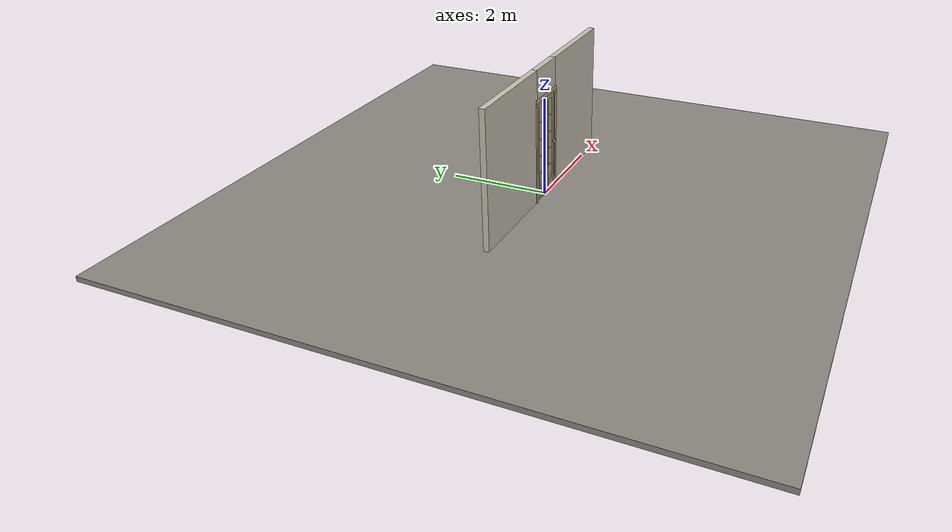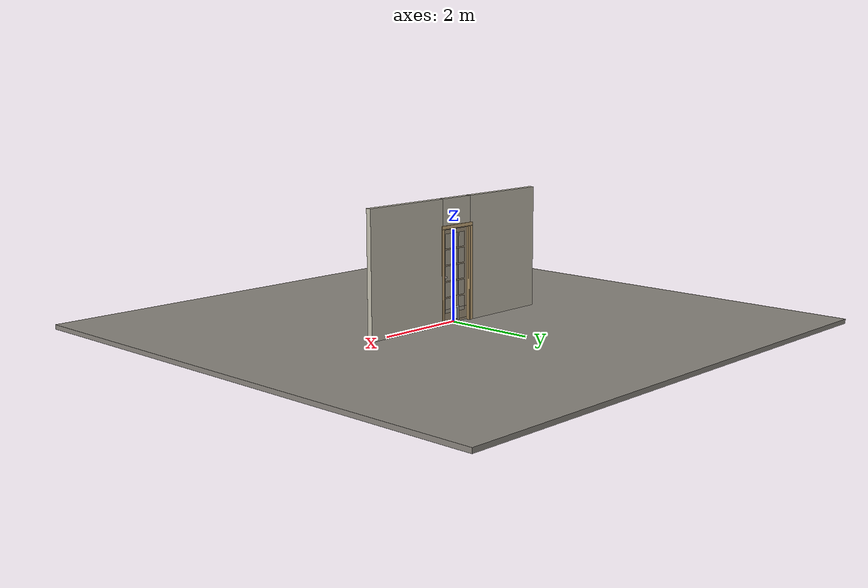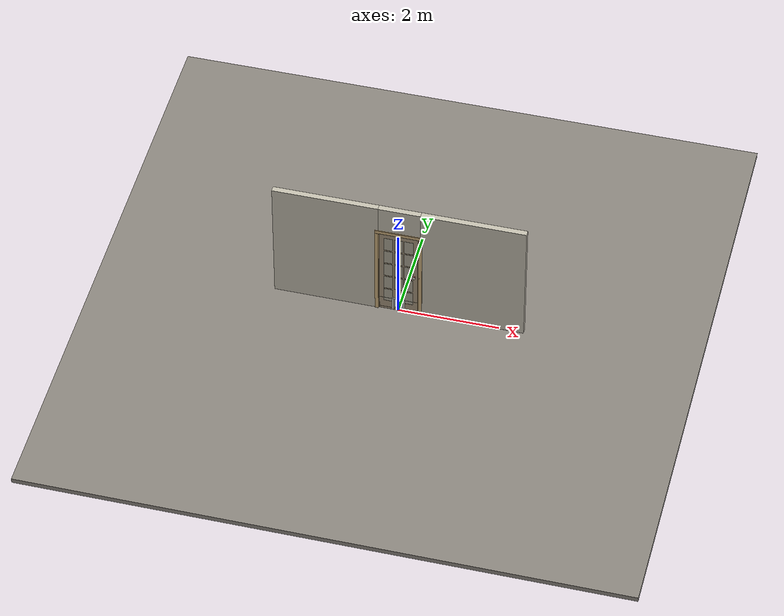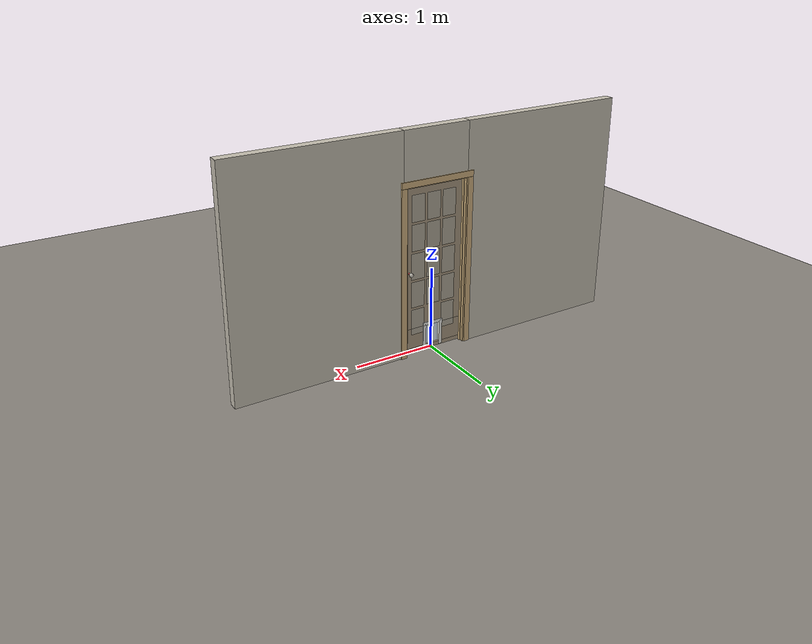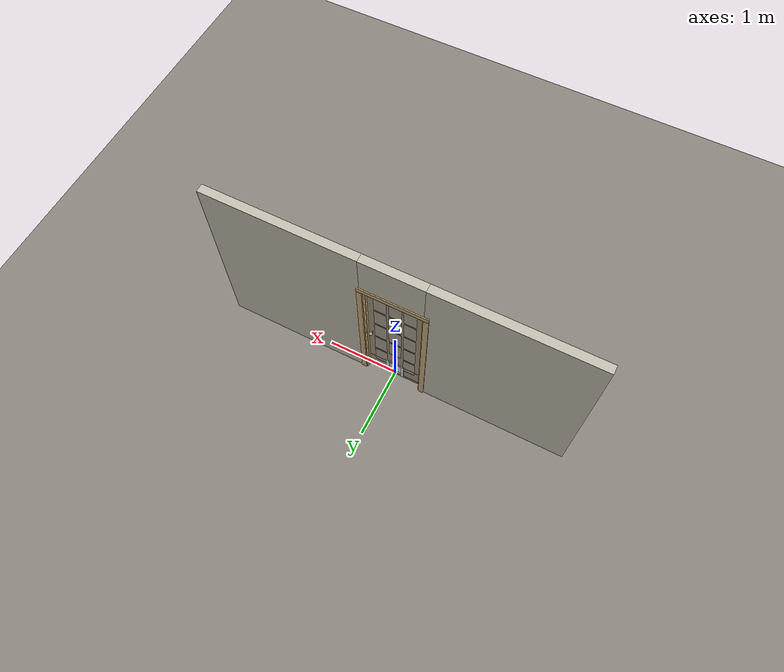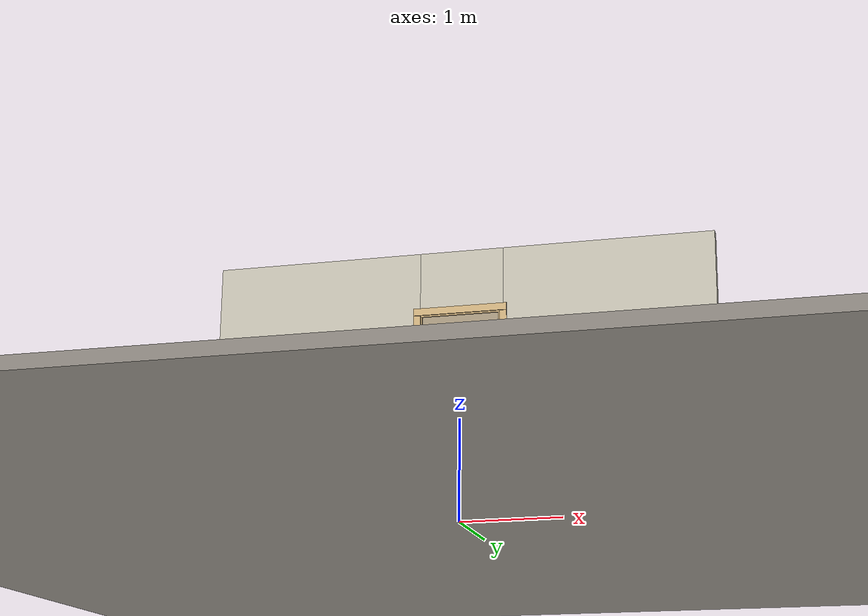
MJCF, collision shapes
<?xml version="1.0" ?>
<mujoco model="db0885_swing_single_full">
  <compiler angle="radian" meshdir="../../hardware" texturedir="../../textures" autolimits="true" inertiafromgeom="false"/>
  <option timestep="0.002" integrator="implicitfast" cone="elliptic" impratio="10" noslip_iterations="3">
    <flag multiccd="enable"/>
  </option>
  <size memory="16M"/>
  <default>
    <geom condim="4" solref="0.005 1" solimp="0.95 0.99 0.001"/>
    <joint solreflimit="0.005 1" solimplimit="0.95 0.99 0.001"/>
    <tendon solreflimit="0.005 1"/>
    <equality solref="0.002 1"/>
  </default>
  <visual>
    <headlight ambient="0.4 0.4 0.4" diffuse="0.7 0.7 0.7" specular="0.2 0.2 0.2"/>
    <quality shadowsize="4096"/>
    <map znear="0.01" zfar="60"/>
  </visual>
  <asset>
    <mesh name="hinge_9ae1f9b7de" file="hinge_9ae1f9b7de.obj"/>
    <mesh name="hinge_jamb_50e97ebc96" file="hinge_jamb_50e97ebc96.obj"/>
    <mesh name="knob_248d825e64" file="knob_248d825e64.obj"/>
    <mesh name="knob_d1888f6f03" file="knob_d1888f6f03.obj"/>
    <material name="mat_floor" rgba="0.55 0.53 0.5 1" specular="0.2" shininess="0.15" reflectance="0"/>
    <material name="mat_wall" rgba="0.78 0.76 0.7 1" specular="0.2" shininess="0.1" reflectance="0"/>
    <material name="mat_leaf" rgba="0.66 0.6 0.5 1" specular="0.2" shininess="0.45" reflectance="0"/>
    <material name="mat_glass" rgba="0.85 0.92 0.95 0.25" specular="0.2" shininess="0.95" reflectance="0.1"/>
    <material name="mat_hinge" rgba="0.65 0.66 0.68 1" specular="0.74" shininess="0.5" reflectance="0.36"/>
    <material name="mat_op_nickel_satin" rgba="0.72 0.7 0.66 1" specular="0.8" shininess="0.65" reflectance="0.4"/>
    <material name="mat_trim" rgba="0.85 0.66 0.3 1" specular="0.8" shininess="0.75" reflectance="0.4"/>
    <material name="mat_bolt" rgba="0.85 0.66 0.3 1" specular="0.8" shininess="0.75" reflectance="0.4"/>
    <material name="mat_frame" rgba="0.82 0.7 0.5 1" specular="0.2" shininess="0.45" reflectance="0"/>
    <material name="mat_seal" rgba="0.1 0.1 0.1 1" specular="0.2" shininess="0.1" reflectance="0"/>
    <material name="mat_petframe" rgba="0.92 0.92 0.9 1" specular="0.2" shininess="0.6" reflectance="0"/>
    <material name="mat_petflap" rgba="0.85 0.9 0.95 0.45" specular="0.2" shininess="0.7" reflectance="0.1"/>
    <texture name="skybox" type="skybox" builtin="gradient" rgb1="0.6 0.7 0.85" rgb2="0.9 0.92 0.95" width="256" height="256"/>
  </asset>
  <worldbody>
    <light name="sun" pos="1.5 -2.5 4" dir="-0.3 0.5 -0.8" directional="true" diffuse="0.8 0.8 0.8" specular="0.3 0.3 0.3" castshadow="true"/>
    <light name="fill" pos="-1.5 2.5 3" dir="0.3 -0.5 -0.7" directional="true" diffuse="0.35 0.35 0.4" castshadow="false"/>
    <camera name="robot_view" pos="0 -2.511687 1.734312" xyaxes="1 0 0 0 0.26963 0.962964" fovy="52"/>
    <camera name="far_view" pos="0 2.572687 1.734312" xyaxes="-1 0 0 0 -0.26963 0.962964" fovy="52"/>
    <camera name="iso" pos="1.932062 -2.104938 2.141063" xyaxes="0.741536 0.670913 0 -0.242917 0.268487 0.932151" fovy="46"/>
    <camera name="detail_handle" pos="0.5005 -0.8665 1.296" xyaxes="0.97561 0.219512 0 -0.070934 0.315262 0.94635" fovy="38"/>
    <geom name="floor" type="box" size="6 6 0.05" pos="0 0 -0.05" material="mat_floor" group="0" contype="1" conaffinity="1" friction="0.8 0.005 0.0001" density="2400"/>
    <geom name="wall_left" type="box" size="1.04825 0.0575 1.35" pos="-1.45175 0.0305 1.35" material="mat_wall" group="0" contype="1" conaffinity="1" friction="0.6 0.005 0.0001" density="800"/>
    <geom name="wall_right" type="box" size="1.03325 0.0575 1.35" pos="1.46675 0.0305 1.35" material="mat_wall" group="0" contype="1" conaffinity="1" friction="0.6 0.005 0.0001" density="800"/>
    <geom name="wall_header" type="box" size="0.4185 0.0575 0.303" pos="0.015 0.0305 2.397" material="mat_wall" group="0" contype="1" conaffinity="1" friction="0.6 0.005 0.0001" density="800"/>
    <geom name="hinge_0_jamb" type="mesh" mesh="hinge_jamb_50e97ebc96" pos="-0.3815 -0.027 0.259" material="mat_hinge" group="1" contype="0" conaffinity="0" density="7850"/>
    <geom name="hinge_1_jamb" type="mesh" mesh="hinge_jamb_50e97ebc96" pos="-0.3815 -0.027 1.025" material="mat_hinge" group="1" contype="0" conaffinity="0" density="7850"/>
    <geom name="hinge_2_jamb" type="mesh" mesh="hinge_jamb_50e97ebc96" pos="-0.3815 -0.027 1.861" material="mat_hinge" group="1" contype="0" conaffinity="0" density="7850"/>
    <geom name="jamb_hinge" type="box" size="0.0095 0.0575 1.0225" pos="-0.394 0.0305 1.0225" material="mat_frame" group="0" contype="1" conaffinity="1" friction="0.6 0.005 0.0001" density="400"/>
    <geom name="strike_1016_wall_n" type="box" size="0.0245 0.040075 0.0167" pos="0.409 0.047925 1.016" material="mat_frame" group="0" contype="1" conaffinity="1" friction="0.6 0.005 0.0001" density="400"/>
    <geom name="strike_1016_wall_p" type="box" size="0.0245 0.008 0.0167" pos="0.409 -0.01585 1.016" material="mat_frame" group="0" contype="1" conaffinity="1" friction="0.6 0.005 0.0001" density="400"/>
    <geom name="strike_1016_ramp" type="box" size="0.0245 0.01649 0.0167" pos="0.413636 -0.028673 1.016" quat="0.977148 0 0 0.212558" material="mat_frame" group="0" contype="1" conaffinity="1" friction="0.12 0.005 0.0001" density="400"/>
    <geom name="strike_1016_back" type="box" size="0.01615 0.00785 0.0167" pos="0.41735 0 1.016" material="mat_frame" group="0" contype="1" conaffinity="1" friction="0.6 0.005 0.0001" density="400"/>
    <geom name="jamb_strike_0" type="box" size="0.0245 0.0575 0.49965" pos="0.409 0.0305 0.49965" material="mat_frame" group="0" contype="1" conaffinity="1" friction="0.6 0.005 0.0001" density="400"/>
    <geom name="jamb_strike_1" type="box" size="0.0245 0.0575 0.50615" pos="0.409 0.0305 1.53885" material="mat_frame" group="0" contype="1" conaffinity="1" friction="0.6 0.005 0.0001" density="400"/>
    <geom name="jamb_head" type="box" size="0.4185 0.0575 0.0095" pos="0.015 0.0305 2.0545" material="mat_frame" group="0" contype="1" conaffinity="1" friction="0.6 0.005 0.0001" density="400"/>
    <geom name="head_stud" type="box" size="0.4185 0.0575 0.015" pos="0.015 0.0305 2.079" material="mat_wall" group="0" contype="1" conaffinity="1" friction="0.6 0.005 0.0001" density="500"/>
    <geom name="stop_hinge" type="box" size="0.0055 0.016 1.0225" pos="-0.379 0.0365 1.0225" material="mat_frame" group="0" contype="1" conaffinity="1" friction="0.6 0.005 0.0001" density="400"/>
    <geom name="stop_strike" type="box" size="0.0055 0.016 1.0225" pos="0.379 0.0365 1.0225" material="mat_frame" group="0" contype="1" conaffinity="1" friction="0.6 0.005 0.0001" density="400"/>
    <geom name="stop_head" type="box" size="0.3845 0.016 0.0055" pos="0 0.0365 2.0395" material="mat_frame" group="0" contype="1" conaffinity="1" friction="0.6 0.005 0.0001" density="400"/>
    <geom name="seal_hinge" type="box" size="0.004 0.0015 1.0225" pos="-0.3815 0.0215 1.0225" material="mat_seal" group="1" contype="0" conaffinity="0" density="1100"/>
    <geom name="seal_strike" type="box" size="0.004 0.0015 1.0225" pos="0.3815 0.0215 1.0225" material="mat_seal" group="1" contype="0" conaffinity="0" density="1100"/>
    <geom name="seal_head" type="box" size="0.3645 0.0015 0.008" pos="0 0.0215 2.033" material="mat_seal" group="1" contype="0" conaffinity="0" density="1100"/>
    <geom name="casing_l_n" type="box" size="0.035 0.008 1.032" pos="-0.4335 -0.035 1.0225" material="mat_frame" group="2" contype="0" conaffinity="0" density="400"/>
    <geom name="casing_r_n" type="box" size="0.035 0.008 1.032" pos="0.4335 -0.035 1.0225" material="mat_frame" group="2" contype="0" conaffinity="0" density="400"/>
    <geom name="casing_h_n" type="box" size="0.4685 0.008 0.035" pos="0 -0.035 2.094" material="mat_frame" group="2" contype="0" conaffinity="0" density="400"/>
    <geom name="casing_l_p" type="box" size="0.035 0.008 1.032" pos="-0.4335 0.096 1.0225" material="mat_frame" group="2" contype="0" conaffinity="0" density="400"/>
    <geom name="casing_r_p" type="box" size="0.035 0.008 1.032" pos="0.4335 0.096 1.0225" material="mat_frame" group="2" contype="0" conaffinity="0" density="400"/>
    <geom name="casing_h_p" type="box" size="0.4685 0.008 0.035" pos="0 0.096 2.094" material="mat_frame" group="2" contype="0" conaffinity="0" density="400"/>
    <site name="approach_point" pos="0 -1.5 0" quat="1 0 0 0" size="0.05" rgba="0.2 0.9 0.2 0.5" group="4"/>
    <site name="goal_point" pos="0 1.5 0" quat="1 0 0 0" size="0.05" rgba="0.2 0.9 0.2 0.5" group="4"/>
    <site name="door_plane_center" pos="0 0 1.0225" quat="1 0 0 0" size="0.02" rgba="0.2 0.9 0.2 0.5" group="4"/>
    <body name="leaf" pos="-0.3845 0 0">
      <inertial pos="0.375536 -0.000535 0.917165" mass="26.102148" quat="0.501902 0.499801 0.500286 -0.498004" diaginertia="1.194168873 9.776523057 10.962479134"/>
      <joint name="leaf_hinge" type="hinge" axis="0 0 -1" pos="0.003 -0.027 0" limited="true" range="0 2.356194" solreflimit="0.02 1" damping="0.173726" frictionloss="0.647363" armature="0.02"/>
      <geom name="leaf_slab_below" type="box" size="0.381 0.02 0.0245" pos="0.384 0 0.0335" material="mat_leaf" group="0" contype="1" conaffinity="1" friction="0.35 0.005 0.0001" density="1"/>
      <geom name="leaf_slab_above" type="box" size="0.381 0.02 0.8655" pos="0.384 0 1.1755" material="mat_leaf" group="0" contype="1" conaffinity="1" friction="0.35 0.005 0.0001" density="1"/>
      <geom name="leaf_slab_left" type="box" size="0.145 0.02 0.126" pos="0.148 0 0.184" material="mat_leaf" group="0" contype="1" conaffinity="1" friction="0.35 0.005 0.0001" density="1"/>
      <geom name="leaf_slab_right" type="box" size="0.145 0.02 0.126" pos="0.62 0 0.184" material="mat_leaf" group="0" contype="1" conaffinity="1" friction="0.35 0.005 0.0001" density="1"/>
      <geom name="leaf_glass_0" type="box" size="0.087 0.0208 0.158688" pos="0.18 0 0.391208" material="mat_glass" group="1" contype="0" conaffinity="0" density="1"/>
      <geom name="leaf_glass_2" type="box" size="0.087 0.0208 0.158688" pos="0.588 0 0.391208" material="mat_glass" group="1" contype="0" conaffinity="0" density="1"/>
      <geom name="leaf_glass_3" type="box" size="0.087 0.0208 0.158688" pos="0.18 0 0.738584" material="mat_glass" group="1" contype="0" conaffinity="0" density="1"/>
      <geom name="leaf_glass_4" type="box" size="0.087 0.0208 0.158688" pos="0.384 0 0.738584" material="mat_glass" group="1" contype="0" conaffinity="0" density="1"/>
      <geom name="leaf_glass_5" type="box" size="0.087 0.0208 0.158688" pos="0.588 0 0.738584" material="mat_glass" group="1" contype="0" conaffinity="0" density="1"/>
      <geom name="leaf_glass_6" type="box" size="0.087 0.0208 0.158688" pos="0.18 0 1.08596" material="mat_glass" group="1" contype="0" conaffinity="0" density="1"/>
      <geom name="leaf_glass_7" type="box" size="0.087 0.0208 0.158688" pos="0.384 0 1.08596" material="mat_glass" group="1" contype="0" conaffinity="0" density="1"/>
      <geom name="leaf_glass_8" type="box" size="0.087 0.0208 0.158688" pos="0.588 0 1.08596" material="mat_glass" group="1" contype="0" conaffinity="0" density="1"/>
      <geom name="leaf_glass_9" type="box" size="0.087 0.0208 0.158688" pos="0.18 0 1.433336" material="mat_glass" group="1" contype="0" conaffinity="0" density="1"/>
      <geom name="leaf_glass_10" type="box" size="0.087 0.0208 0.158688" pos="0.384 0 1.433336" material="mat_glass" group="1" contype="0" conaffinity="0" density="1"/>
      <geom name="leaf_glass_11" type="box" size="0.087 0.0208 0.158688" pos="0.588 0 1.433336" material="mat_glass" group="1" contype="0" conaffinity="0" density="1"/>
      <geom name="leaf_glass_12" type="box" size="0.087 0.0208 0.158688" pos="0.18 0 1.780712" material="mat_glass" group="1" contype="0" conaffinity="0" density="1"/>
      <geom name="leaf_glass_13" type="box" size="0.087 0.0208 0.158688" pos="0.384 0 1.780712" material="mat_glass" group="1" contype="0" conaffinity="0" density="1"/>
      <geom name="leaf_glass_14" type="box" size="0.087 0.0208 0.158688" pos="0.588 0 1.780712" material="mat_glass" group="1" contype="0" conaffinity="0" density="1"/>
      <geom name="hinge_0" type="mesh" mesh="hinge_9ae1f9b7de" pos="0.003 -0.027 0.259" material="mat_hinge" group="1" contype="0" conaffinity="0" density="7850"/>
      <geom name="hinge_1" type="mesh" mesh="hinge_9ae1f9b7de" pos="0.003 -0.027 1.025" material="mat_hinge" group="1" contype="0" conaffinity="0" density="7850"/>
      <geom name="hinge_2" type="mesh" mesh="hinge_9ae1f9b7de" pos="0.003 -0.027 1.861" material="mat_hinge" group="1" contype="0" conaffinity="0" density="7850"/>
      <geom name="leaf_latch_bolt_faceplate" type="box" size="0.0006 0.01235 0.0267" pos="0.7644 0 1.016" material="mat_bolt" group="1" contype="0" conaffinity="0" density="8500"/>
      <geom name="pet_frame_top" type="box" size="0.13 0.026 0.02" pos="0.384 0 0.329" material="mat_petframe" group="2" contype="0" conaffinity="0" density="1200"/>
      <geom name="pet_frame_l" type="box" size="0.02 0.026 0.165" pos="0.274 0 0.184" material="mat_petframe" group="2" contype="0" conaffinity="0" density="1200"/>
      <geom name="pet_frame_r" type="box" size="0.02 0.026 0.165" pos="0.494 0 0.184" material="mat_petframe" group="2" contype="0" conaffinity="0" density="1200"/>
      <site name="leaf_edge_mid" pos="0.765 0 1.016" quat="1 0 0 0" size="0.02" rgba="0.2 0.9 0.2 0.5" group="4"/>
      <body name="leaf_handle" pos="0.705 0 1.016">
        <inertial pos="0 0.000221 0" mass="1.1511" quat="0.5 0.5 0.5 0.5" diaginertia="0.000312482 0.004034625 0.004034625"/>
        <joint name="leaf_handle_hinge" type="hinge" axis="0 -1 0" limited="true" range="0 0.87" damping="0.143614" frictionloss="0.038" stiffness="0.5" springref="-0.5" armature="0.01"/>
        <geom name="leaf_handle_spindle" type="cylinder" size="0.006 0.028" pos="0 0 0" quat="0.707107 -0.707107 0 0" material="mat_op_nickel_satin" group="1" contype="0" conaffinity="0" density="7850"/>
        <geom name="leaf_handle_knob_n" type="mesh" mesh="knob_d1888f6f03" pos="0 -0.02 0" quat="0.707107 0.707107 0 0" material="mat_op_nickel_satin" group="1" contype="0" conaffinity="0" density="3000"/>
        <geom name="leaf_handle_knob_col_n" type="sphere" size="0.0243" pos="0 -0.0665 0" material="mat_op_nickel_satin" group="0" contype="1" conaffinity="1" friction="0.9 0.01 0.0001" density="3000"/>
        <geom name="leaf_handle_knob_neck_n" type="cylinder" size="0.011 0.012" pos="0 -0.032 0" quat="0.707107 -0.707107 0 0" material="mat_op_nickel_satin" group="3" contype="1" conaffinity="1" rgba="0.8 0.3 0.3 0.25" friction="0.6 0.005 0.0001" density="3000"/>
        <geom name="leaf_handle_knob_p" type="mesh" mesh="knob_248d825e64" pos="0 0.02 0" quat="-0.707107 0.707107 0 0" material="mat_op_nickel_satin" group="1" contype="0" conaffinity="0" density="3000"/>
        <geom name="leaf_handle_knob_col_p" type="sphere" size="0.0243" pos="0 0.0665 0" material="mat_op_nickel_satin" group="0" contype="1" conaffinity="1" friction="0.9 0.01 0.0001" density="3000"/>
        <geom name="leaf_handle_knob_neck_p" type="cylinder" size="0.011 0.012" pos="0 0.032 0" quat="0.707107 -0.707107 0 0" material="mat_op_nickel_satin" group="3" contype="1" conaffinity="1" rgba="0.8 0.3 0.3 0.25" friction="0.6 0.005 0.0001" density="3000"/>
        <site name="leaf_handle_grip_n" pos="0 -0.0665 0" quat="1 0 0 0" size="0.012" rgba="0.2 0.9 0.2 0.5" group="4"/>
        <site name="leaf_handle_grip_p" pos="0 0.0665 0" quat="1 0 0 0" size="0.012" rgba="0.2 0.9 0.2 0.5" group="4"/>
      </body>
      <body name="leaf_latch_bolt" pos="0.765 0 1.016">
        <inertial pos="-0.00865 0 0" mass="0.041419" quat="0.92388 -0.382683 0 0" diaginertia="0.000000798 0.000005598 0.000005598"/>
        <joint name="leaf_latch_bolt_slide" type="slide" axis="-1 0 0" limited="true" range="0 0.0127" damping="2" frictionloss="0.3" stiffness="300" springref="-0.008333" armature="0.1"/>
        <geom name="leaf_latch_bolt_capsule" type="capsule" size="0.00635 0.015" pos="-0.00865 0 0" quat="0.707107 0 0.707107 0" material="mat_bolt" group="0" contype="1" conaffinity="1" friction="0.2 0.005 0.0001" density="8500"/>
      </body>
      <body name="pet_flap" pos="0.384 0 0.309">
        <inertial pos="0 0 -0.125" mass="0.046125" quat="-0.5 0.5 0.5 0.5" diaginertia="0.000113775 0.000225167 0.00033882"/>
        <joint name="pet_flap_hinge" type="hinge" axis="1 0 0" limited="true" range="-1.45 1.45" damping="0.02" frictionloss="0.02" armature="0.005"/>
        <geom name="pet_flap_geom" type="box" size="0.086 0.002 0.121" pos="0 0 -0.125" material="mat_petflap" group="0" contype="1" conaffinity="1" friction="0.6 0.005 0.0001" density="1250"/>
      </body>
    </body>
  </worldbody>
  <tendon>
    <fixed name="leaf_latch_bolt_coupling" limited="true" range="0 10">
      <joint joint="leaf_latch_bolt_slide" coef="1"/>
      <joint joint="leaf_handle_hinge" coef="-0.015679"/>
    </fixed>
  </tendon>
  <sensor>
    <jointpos name="leaf_hinge_pos" joint="leaf_hinge"/>
    <jointvel name="leaf_hinge_vel" joint="leaf_hinge"/>
    <jointpos name="leaf_handle_hinge_pos" joint="leaf_handle_hinge"/>
    <jointvel name="leaf_handle_hinge_vel" joint="leaf_handle_hinge"/>
    <jointpos name="leaf_latch_bolt_slide_pos" joint="leaf_latch_bolt_slide"/>
    <jointvel name="leaf_latch_bolt_slide_vel" joint="leaf_latch_bolt_slide"/>
    <jointpos name="pet_flap_hinge_pos" joint="pet_flap_hinge"/>
    <jointvel name="pet_flap_hinge_vel" joint="pet_flap_hinge"/>
  </sensor>
</mujoco>
